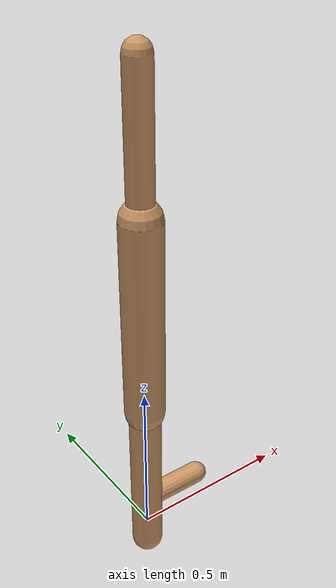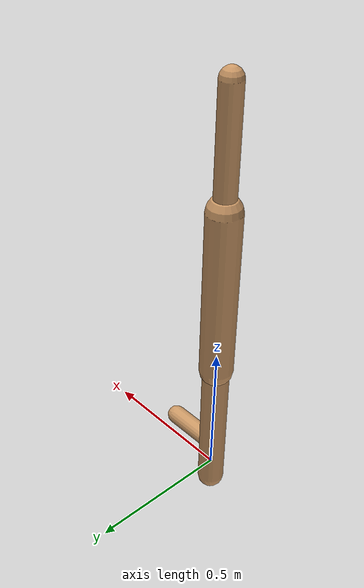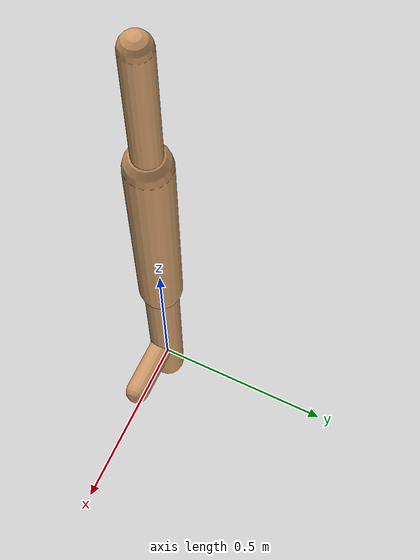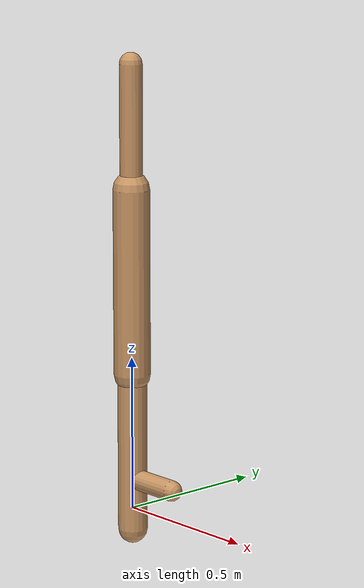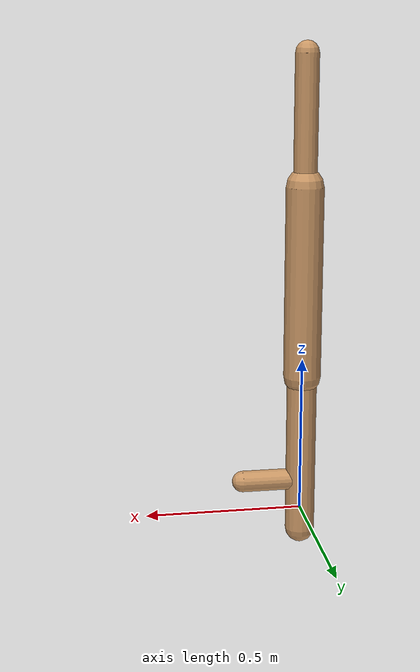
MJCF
<mujoco model="walker2d">
  <compiler angle="degree" coordinate="global" inertiafromgeom="true" />
  <default>
    <joint armature="0.01" damping=".1" limited="true" />
    <geom conaffinity="0" condim="3" contype="1" density="1000" friction="0.8 .1 .1" rgba="0.8 0.6 .4 1" />
  </default>
  <option integrator="RK4" timestep="0.002" />
  <worldbody>

    <body name="torso" pos="0 0 0.3223685541973452">
      <joint armature="0" axis="1 0 0" damping="0" limited="false" name="ignorex" pos="0 0 0" stiffness="0" type="slide" />
      <joint armature="0" axis="0 0 1" damping="0" limited="false" name="ignorez" pos="0 0 0" ref="1.25" stiffness="0" type="slide" />
      <joint armature="0" axis="0 1 0" damping="0" limited="false" name="ignorey" pos="0 0 0" stiffness="0" type="hinge" />
      <geom fromto="0 0 1.45 0 0 1.05" name="torso_geom" size="0.03670650034015247" type="capsule" />
      <body name="thigh">
        <joint axis="0 -1 0" name="thigh_joint" pos="0 0 1.05" range="-150 0" type="hinge" />
        <geom fromto="0.0 0.0 1.05 0.0 0.0 0.44729910590652067" name="thigh_geom" size="0.05898954739589332" type="capsule" />
        <body name="leg" pos="0.0 0.0 -0.1527008940934793">
          <joint axis="0 -1 0" name="leg_joint" pos="0 0 0.6" range="-150 0" type="hinge" />
          <geom fromto="0.0 0.0 0.6 0.0 0.0 -0.06966766010386588" name="leg_geom" size="0.04719163791671466" type="capsule" />
          <body name="foot" pos="0.0 0.0 -0.16966766010386589">
            <joint axis="0 -1 0" name="foot_joint" pos="0 0 0.1" range="-45 45" type="hinge" />
            <geom fromto="0.0 0.0 0.1 0.18909488485690523 0.0 0.1" name="foot_geom" size="0.03363259609867796" type="capsule" />
          </body>
        </body>
      </body>

      <body name="thigh_left">
        <joint axis="0 -1 0" name="thigh_left_joint" pos="0 0 1.05" range="-150 0" type="hinge" />
        <geom fromto="0.0 0.0 1.05 0.0 0.0 0.44729910590652067" name="thigh_left_geom" rgba=".7 .3 .6 1" size="0.05898954739589332" type="capsule" />
        <body name="leg_left" pos="0.0 0.0 -0.1527008940934793">
          <joint axis="0 -1 0" name="leg_left_joint" pos="0 0 0.6" range="-150 0" type="hinge" />
          <geom fromto="0.0 0.0 0.6 0.0 0.0 -0.06966766010386588" name="leg_left_geom" rgba=".7 .3 .6 1" size="0.04719163791671466" type="capsule" />
          <body name="foot_left" pos="0.0 0.0 -0.16966766010386589">
            <joint axis="0 -1 0" name="foot_left_joint" pos="0 0 0.1" range="-45 45" type="hinge" />
            <geom fromto="0.0 0.0 0.1 0.18909488485690523 0.0 0.1" name="foot_left_geom" rgba=".7 .3 .6 1" size="0.03363259609867796" type="capsule" />
          </body>
        </body>
      </body>
    </body>
  </worldbody>
  <actuator>

    <motor ctrllimited="true" ctrlrange="-1.0 1.0" gear="100" joint="thigh_joint" />
    <motor ctrllimited="true" ctrlrange="-1.0 1.0" gear="100" joint="leg_joint" />
    <motor ctrllimited="true" ctrlrange="-1.0 1.0" gear="100" joint="foot_joint" />
    <motor ctrllimited="true" ctrlrange="-1.0 1.0" gear="100" joint="thigh_left_joint" />
    <motor ctrllimited="true" ctrlrange="-1.0 1.0" gear="100" joint="leg_left_joint" />
    <motor ctrllimited="true" ctrlrange="-1.0 1.0" gear="100" joint="foot_left_joint" />

  </actuator>
</mujoco>
